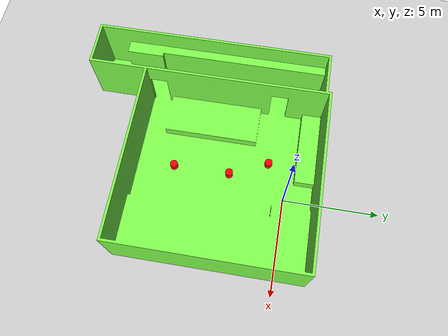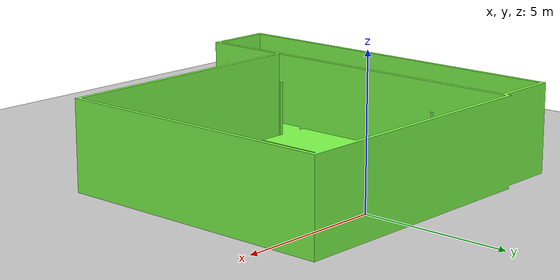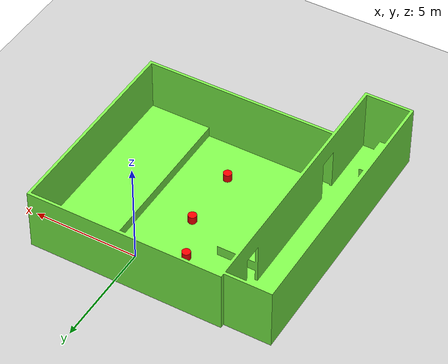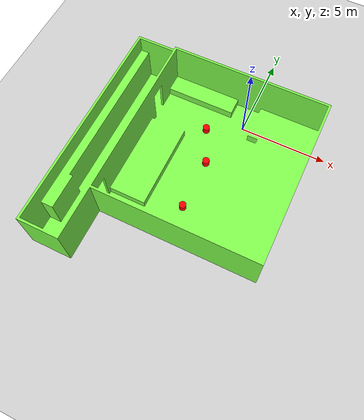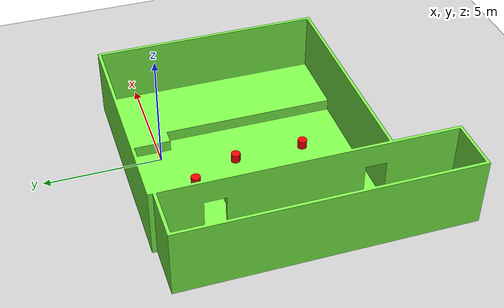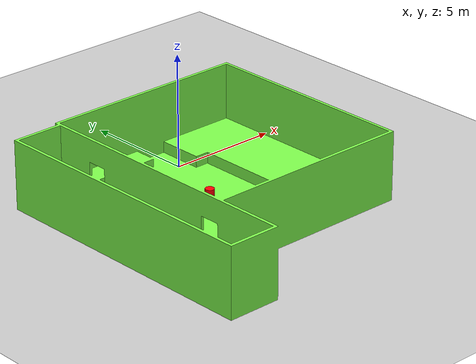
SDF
<sdf version="1.7">
  <world name="sim_world">
    <plugin
      filename="gz-sim-physics-system"
      name="gz::sim::systems::Physics">
    </plugin>
    <plugin
      filename="gz-sim-sensors-system"
      name="gz::sim::systems::Sensors">
      <render_engine>ogre2</render_engine>
    </plugin>
    <plugin
      filename="gz-sim-user-commands-system"
      name="gz::sim::systems::UserCommands">
    </plugin>
    <plugin
      filename="gz-sim-scene-broadcaster-system"
      name="gz::sim::systems::SceneBroadcaster">
    </plugin>
    <plugin filename="gz-sim-imu-system"
        name="gz::sim::systems::Imu">
    </plugin>
    <scene>
      <ambient>1 1 1</ambient>
      <background>0.8 0.8 0.8</background>
      <grid>true</grid>
    </scene>

    <include>
      <uri>
        https://fuel.gazebosim.org/1.0/OpenRobotics/models/Ground Plane
      </uri>
    </include>

    <light type="directional" name="sun">
      <cast_shadows>true</cast_shadows>
      <pose>0 0 10 0 0 0</pose>
      <diffuse>1 1 1 1</diffuse>
      <specular>0.2 0.2 0.2 1</specular>
      <attenuation>
        <range>1000</range>
        <constant>0.09</constant>
        <linear>0.001</linear>
        <quadratic>0.001</quadratic>
      </attenuation>
      <direction>0.0 0.1 -5.9</direction>
    </light>

    <include>
      <name>addinedu_map</name>
      <uri>model://addinedu_map</uri>
      <pose>-5 -8 0.01 0 0 0</pose>
    </include>

    <include>
      <name>red_cylinder_1</name>
      <uri>model://red_cylinder</uri>
      <pose>-1.0 -6 0.02 0 0 0</pose>
    </include>

    <include>
      <name>red_cylinder_2</name>
      <uri>model://red_cylinder</uri>
      <pose>-1 -3 0.02 0 0 0</pose>
    </include>

    <include>
      <name>red_cylinder_3</name>
      <uri>model://red_cylinder</uri>
      <pose>-1.9 -1.0 0.02 0 0 0</pose>
    </include>

  </world>
</sdf>

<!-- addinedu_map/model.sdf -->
<sdf version="1.7">
  <model name="addinedu_map">
    <static>true</static>
    <link name="addinedu_link">
      <pose>0 0 0 1.5708 0 0</pose>
      <visual name="addinedu_visual">
        <geometry>
          <mesh>
            <uri>model://addinedu_map/meshes/addinedu.obj</uri>
          </mesh>
        </geometry>
        <material>
          <ambient>1 1 1 1</ambient>
          <diffuse>0.5 1.0 0.3 1</diffuse>
        </material>
      </visual>
      <collision name="addinedu_collision">
        <geometry>
          <mesh>
            <uri>model://addinedu_map/meshes/addinedu.obj</uri>
          </mesh>
        </geometry>
      </collision>
    </link>
  </model>
</sdf>

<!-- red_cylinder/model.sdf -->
<sdf version="1.6">
  <model name="red_cylinder">
    <static>true</static>
    <link name="link">
      <inertial>
        <mass>0.050</mass>
        <inertia>
          <ixx>0.000000204</ixx>
          <ixy>0</ixy>
          <ixz>0</ixz>
          <iyy>0.000000204</iyy>
          <iyz>0</iyz>
          <izz>0.000000039</izz>
        </inertia>
      </inertial>
      <collision name="collision">
        <geometry>
          <cylinder>
            <radius>0.20</radius>
            <length>0.75</length>
          </cylinder>
        </geometry>
      </collision>
      <visual name="visual">
        <geometry>
          <cylinder>
            <radius>0.20</radius>
            <length>0.75</length>
          </cylinder>
        </geometry>
        <material>
          <ambient>1.0 0.0 0.0 1</ambient>
          <diffuse>1.0 0.0 0.0 1</diffuse>
          <specular>0.5 0.5 0.5 1</specular>
          <emissive>0.1 0 0 1</emissive>
        </material>
      </visual>
    </link>
  </model>
</sdf>
